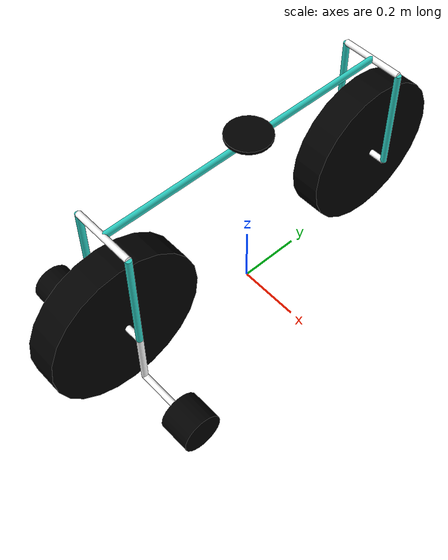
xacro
<?xml version="1.0"?>
<robot name="bicycle" xmlns:xacro="http://www.ros.org/wiki/xacro">

    <!-- XACRO ARG -->
    <xacro:arg name="sim_mode" default="true" />

    <!-- XACRO INCLUDE -->
    <xacro:include filename="material.xacro" />
    <xacro:include filename="property.xacro" />
    <xacro:include filename="inertial.xacro" />
    <xacro:include filename="lidar.xacro" />
    <xacro:include filename="ros2_control.xacro" />

    <!-- BASE LINK -->
    <link name="base_link" />

    <!-- BASE FOOTPRINT LINK -->
    <joint name="base_footprint_joint" type="fixed">
        <parent link="base_link" />
        <child link="base_footprint" />
        <origin xyz="0 0 0" rpy="0 0 0" />
    </joint>

    <link name="base_footprint" />

    <!-- FRAME LINK -->
    <joint name="base_frame_joint" type="fixed">
        <parent link="base_link" />
        <child link="frame" />
        <origin xyz="0 0 ${frame_offset_z}" rpy="0 0 0" />
    </joint>

    <link name="frame">
        <visual>
            <origin xyz="0 0 0" rpy="${pi/2} 0 0" />
            <geometry>
                <cylinder length="${wheel_separation}" radius="${cylindar_radius}" />
            </geometry>
            <material name="cyan" />
        </visual>
        <collision>
            <origin xyz="0 0 0" rpy="${pi/2} 0 0" />
            <geometry>
                <cylinder length="${wheel_separation}" radius="${cylindar_radius}" />
            </geometry>
        </collision>
        <xacro:inertial_cylinder mass="${frame_mass}" length="${wheel_separation}"
            radius="${cylindar_radius}">
            <origin xyz="0 0 0" rpy="${pi/2} 0 0" />
        </xacro:inertial_cylinder>
    </link>

    <gazebo reference="frame">
        <material>Gazebo/Turquoise</material>
    </gazebo>

    <!-- HEAD TUBE LINK -->
    <joint name="frame_head_joint" type="revolute">
        <axis xyz="1 0 0" />
        <limit effort="100" lower="-1.570796327" upper="+1.570796327" velocity="10" />
        <parent link="frame" />
        <child link="head_tube" />
        <origin xyz="0 ${wheel_separation/2} 0" rpy="0 ${pi/2} 0" />
    </joint>

    <link name="head_tube">
        <visual>
            <origin xyz="0 0 0" rpy="0 0 0" />
            <geometry>
                <cylinder length="${2*wheel_thickness}" radius="${cylindar_radius}" />
            </geometry>
            <material name="white" />
        </visual>
        <collision>
            <origin xyz="0 0 0" rpy="0 0 0" />
            <geometry>
                <cylinder length="${2*wheel_thickness}" radius="${cylindar_radius}" />
            </geometry>
        </collision>
        <xacro:inertial_cylinder mass="${head_tube_mass}" length="${2*wheel_thickness}"
            radius="${cylindar_radius}">
            <origin xyz="0 0 0" rpy="0 0 0" />
        </xacro:inertial_cylinder>
    </link>

    <gazebo reference="head_tube">
        <material>Gazebo/White</material>
    </gazebo>

    <!-- BACK HEAD TUBE LINK -->
    <joint name="frame_back_head_joint" type="fixed">
        <parent link="frame" />
        <child link="back_head_tube" />
        <origin xyz="0 ${-wheel_separation/2} 0" rpy="0 ${pi/2} 0" />
    </joint>

    <link name="back_head_tube">
        <visual>
            <origin xyz="0 0 0" rpy="0 0 0" />
            <geometry>
                <cylinder length="${2*wheel_thickness}" radius="${cylindar_radius}" />
            </geometry>
            <material name="white" />
        </visual>
        <collision>
            <origin xyz="0 0 0" rpy="0 0 0" />
            <geometry>
                <cylinder length="${2*wheel_thickness}" radius="${cylindar_radius}" />
            </geometry>
        </collision>
        <xacro:inertial_cylinder mass="${head_tube_mass}" length="${2*wheel_thickness}"
            radius="${cylindar_radius}">
            <origin xyz="0 0 0" rpy="0 0 0" />
        </xacro:inertial_cylinder>
    </link>

    <gazebo reference="back_head_tube">
        <material>Gazebo/White</material>
    </gazebo>

    <!-- FORK RIGHT LINK -->
    <joint name="head_fork_right_joint" type="fixed">
        <parent link="head_tube" />
        <child link="fork_right" />
        <origin xyz="0 0 ${wheel_thickness}" rpy="0 ${-pi/2} 0" />
    </joint>

    <link name="fork_right">
        <visual>
            <origin xyz="0 0 ${-(wheel_radius+const_1)/2}" rpy="0 0 0" />
            <geometry>
                <cylinder length="${wheel_radius+const_1}" radius="${cylindar_radius}" />
            </geometry>
            <material name="cyan" />
        </visual>
        <collision>
            <origin xyz="0 0 ${-(wheel_radius+const_1)/2}" rpy="0 0 0" />
            <geometry>
                <cylinder length="${wheel_radius+const_1}" radius="${cylindar_radius}" />
            </geometry>
        </collision>
        <xacro:inertial_cylinder mass="${fork_mass}" length="${wheel_radius+const_1}"
            radius="${cylindar_radius}">
            <origin xyz="0 0 ${-(wheel_radius+const_1)/2}" rpy="0 0 0" />
        </xacro:inertial_cylinder>
    </link>

    <gazebo reference="fork_right">
        <material>Gazebo/Turquoise</material>
    </gazebo>

    <!-- FORK LEFT LINK -->
    <joint name="head_fork_left_joint" type="fixed">
        <parent link="head_tube" />
        <child link="fork_left" />
        <origin xyz="0 0 ${-wheel_thickness}" rpy="0 ${-pi/2} 0" />
    </joint>

    <link name="fork_left">
        <visual>
            <origin xyz="0 0 ${-(wheel_radius+const_1)/2}" rpy="0 0 0" />
            <geometry>
                <cylinder length="${wheel_radius+const_1}" radius="${cylindar_radius}" />
            </geometry>
            <material name="cyan" />
        </visual>
        <collision>
            <origin xyz="0 0 ${-(wheel_radius+const_1)/2}" rpy="0 0 0" />
            <geometry>
                <cylinder length="${wheel_radius+const_1}" radius="${cylindar_radius}" />
            </geometry>
        </collision>
        <xacro:inertial_cylinder mass="${fork_mass}" length="${wheel_radius+const_1}"
            radius="${cylindar_radius}">
            <origin xyz="0 0 ${-(wheel_radius+const_1)/2}" rpy="0 0 0" />
        </xacro:inertial_cylinder>
    </link>

    <gazebo reference="fork_left">
        <material>Gazebo/Turquoise</material>
    </gazebo>

    <!-- FRONT SCREW LINK -->
    <joint name="head_back_screw_joint" type="fixed">
        <parent link="head_tube" />
        <child link="front_screw" />
        <origin xyz="${wheel_radius+const_1} 0 0" rpy="0 0 0" />
    </joint>

    <link name="front_screw">
        <visual>
            <origin xyz="0 0 0" rpy="0 0 0" />
            <geometry>
                <cylinder length="${2*wheel_thickness}" radius="${cylindar_radius}" />
            </geometry>
            <material name="white" />
        </visual>
        <collision>
            <origin xyz="0 0 0" rpy="0 0 0" />
            <geometry>
                <cylinder length="${2*wheel_thickness}" radius="${cylindar_radius}" />
            </geometry>
        </collision>
        <xacro:inertial_cylinder mass="${screw_mass}" length="${2*wheel_thickness}"
            radius="${cylindar_radius}">
            <origin xyz="0 0 0" rpy="0 0 0" />
        </xacro:inertial_cylinder>
    </link>

    <gazebo reference="front_screw">
        <material>Gazebo/White</material>
    </gazebo>

    <!-- SEAT STAY LEFT LINK -->
    <joint name="back_head_seat_left_joint" type="fixed">
        <parent link="back_head_tube" />
        <child link="seat_stay_left" />
        <origin xyz="0 0 ${-wheel_thickness}" rpy="0 ${-pi/2} 0" />
    </joint>

    <link name="seat_stay_left">
        <visual>
            <origin xyz="0 0 ${-(wheel_radius+const_1)/2}" rpy="0 0 0" />
            <geometry>
                <cylinder length="${wheel_radius+const_1}" radius="${cylindar_radius}" />
            </geometry>
            <material name="cyan" />
        </visual>
        <collision>
            <origin xyz="0 0 ${-(wheel_radius+const_1)/2}" rpy="0 0 0" />
            <geometry>
                <cylinder length="${wheel_radius+const_1}" radius="${cylindar_radius}" />
            </geometry>
        </collision>
        <xacro:inertial_cylinder mass="${seat_stay_mass}" length="${wheel_radius+const_1}"
            radius="${cylindar_radius}">
            <origin xyz="0 0 ${-(wheel_radius+const_1)/2}" rpy="0 0 0" />
        </xacro:inertial_cylinder>
    </link>

    <gazebo reference="seat_stay_left">
        <material>Gazebo/Turquoise</material>
    </gazebo>

    <!-- SEAT STAY RIGHT LINK -->
    <joint name="back_head_seat_right_joint" type="fixed">
        <parent link="back_head_tube" />
        <child link="seat_stay_right" />
        <origin xyz="0 0 ${+wheel_thickness}" rpy="0 ${-pi/2} 0" />
    </joint>

    <link name="seat_stay_right">
        <visual>
            <origin xyz="0 0 ${-(wheel_radius+const_1)/2}" rpy="0 0 0" />
            <geometry>
                <cylinder length="${wheel_radius+const_1}" radius="${cylindar_radius}" />
            </geometry>
            <material name="cyan" />
        </visual>
        <collision>
            <origin xyz="0 0 ${-(wheel_radius+const_1)/2}" rpy="0 0 0" />
            <geometry>
                <cylinder length="${wheel_radius+const_1}" radius="${cylindar_radius}" />
            </geometry>
        </collision>
        <xacro:inertial_cylinder mass="${seat_stay_mass}" length="${wheel_radius+const_1}"
            radius="${cylindar_radius}">
            <origin xyz="0 0 ${-(wheel_radius+const_1)/2}" rpy="0 0 0" />
        </xacro:inertial_cylinder>
    </link>

    <gazebo reference="seat_stay_right">
        <material>Gazebo/Turquoise</material>
    </gazebo>

    <!-- BACK SCREW LINK -->
    <joint name="back_head_back_screw_joint" type="fixed">
        <parent link="back_head_tube" />
        <child link="back_screw" />
        <origin xyz="${wheel_radius+const_1} 0 0" rpy="0 0 0" />
    </joint>

    <link name="back_screw">
        <visual>
            <origin xyz="0 0 0" rpy="0 0 0" />
            <geometry>
                <cylinder length="${2*wheel_thickness}" radius="${cylindar_radius}" />
            </geometry>
            <material name="white" />
        </visual>
        <collision>
            <origin xyz="0 0 0" rpy="0 0 0" />
            <geometry>
                <cylinder length="${2*wheel_thickness}" radius="${cylindar_radius}" />
            </geometry>
        </collision>
        <xacro:inertial_cylinder mass="${screw_mass}" length="${2*wheel_thickness}"
            radius="${cylindar_radius}">
            <origin xyz="0 0 0" rpy="0 0 0" />
        </xacro:inertial_cylinder>
    </link>

    <gazebo reference="back_screw">
        <material>Gazebo/White</material>
    </gazebo>

    <!-- FRONT WHEEL -->
    <joint name="screw_front_wheel_joint" type="continuous">
        <axis xyz="0 0 1" />
        <parent link="front_screw" />
        <child link="front_wheel" />
        <origin xyz="0 0 0" rpy="0 ${-pi} 0" />
    </joint>

    <link name="front_wheel">
        <visual>
            <origin xyz="0 0 0" rpy="0 0 0" />
            <geometry>
                <cylinder length="${wheel_thickness}" radius="${wheel_radius}" />
            </geometry>
            <material name="black" />
        </visual>
        <collision>
            <origin xyz="0 0 0" rpy="0 0 0" />
            <geometry>
                <sphere radius="${wheel_radius}" />
            </geometry>
        </collision>
        <xacro:inertial_cylinder mass="${wheel_mass}" length="${wheel_thickness}"
            radius="${wheel_radius}">
            <origin xyz="0 0 0" rpy="0 0 0" />
        </xacro:inertial_cylinder>
    </link>

    <gazebo reference="front_wheel">
        <material>Gazebo/Black</material>
    </gazebo>

    <!-- BACK WHEEL -->
    <joint name="screw_back_wheel_joint" type="continuous">
        <axis xyz="0 0 1" />
        <parent link="back_screw" />
        <child link="back_wheel" />
        <origin xyz="0 0 0" rpy="0 ${-pi} 0" />
    </joint>

    <link name="back_wheel">
        <visual>
            <origin xyz="0 0 0" rpy="0 0 0" />
            <geometry>
                <cylinder length="${wheel_thickness}" radius="${wheel_radius}" />
            </geometry>
            <material name="black" />
        </visual>
        <collision>
            <origin xyz="0 0 0" rpy="0 0 0" />
            <geometry>
                <sphere radius="${wheel_radius}" />
            </geometry>
        </collision>
        <xacro:inertial_cylinder mass="${wheel_mass}" length="${wheel_thickness}"
            radius="${wheel_radius}">
            <origin xyz="0 0 0" rpy="0 0 0" />
        </xacro:inertial_cylinder>
    </link>

    <gazebo reference="back_wheel">
        <material>Gazebo/Black</material>
    </gazebo>

    <!-- RIGHT SUPPORT LEG LINK -->
    <joint name="screw_right_support_joint" type="fixed">
        <parent link="back_screw" />
        <child link="right_support_leg" />
        <origin xyz="0 0 ${wheel_thickness}" rpy="0 ${-pi/2} 0" />
    </joint>

    <link name="right_support_leg">
        <visual>
            <origin xyz="0 0 ${-3/8*wheel_radius}" rpy="0 0 0" />
            <geometry>
                <cylinder length="${3/4*wheel_radius}" radius="${cylindar_radius}" />
            </geometry>
            <material name="white" />
        </visual>
        <collision>
            <origin xyz="0 0 ${-3/8*wheel_radius}" rpy="0 0 0" />
            <geometry>
                <cylinder length="${3/4*wheel_radius}" radius="${cylindar_radius}" />
            </geometry>
        </collision>
        <xacro:inertial_cylinder mass="${support_leg_mass}" length="${3/4*wheel_radius}"
            radius="${cylindar_radius}">
            <origin xyz="0 0 ${-3/8*wheel_radius}" rpy="0 0 0" />
        </xacro:inertial_cylinder>
    </link>

    <gazebo reference="right_support_leg">
        <material>Gazebo/White</material>
    </gazebo>

    <!-- RIGHT SUPPORT AXIS LINK -->
    <joint name="right_leg_axis_joint" type="fixed">
        <parent link="right_support_leg" />
        <child link="right_support_axis" />
        <origin xyz="0 0 ${-3/4*wheel_radius}" rpy="0 ${pi/2} 0" />
    </joint>

    <link name="right_support_axis">
        <visual>
            <origin xyz="0 0 ${wheel_thickness}" rpy="0 0 0" />
            <geometry>
                <cylinder length="${2*wheel_thickness}" radius="${cylindar_radius}" />
            </geometry>
            <material name="white" />
        </visual>
        <collision>
            <origin xyz="0 0 ${wheel_thickness}" rpy="0 0 0" />
            <geometry>
                <cylinder length="${2*wheel_thickness}" radius="${cylindar_radius}" />
            </geometry>
        </collision>
        <xacro:inertial_cylinder mass="${support_axis_mass}" length="${2*wheel_thickness}"
            radius="${cylindar_radius}">
            <origin xyz="0 0 ${wheel_thickness}" rpy="0 0 0" />
        </xacro:inertial_cylinder>
    </link>

    <gazebo reference="right_support_axis">
        <material>Gazebo/White</material>
    </gazebo>

    <!-- RIGHT SUPPORT WHEEL LINK -->
    <joint name="right_axis_wheel_joint" type="continuous">
        <axis xyz="0 0 1" />
        <parent link="right_support_axis" />
        <child link="right_support_wheel" />
        <origin xyz="0 0 ${2*wheel_thickness}" rpy="0 ${pi} 0" />
    </joint>

    <link name="right_support_wheel">
        <visual>
            <origin xyz="0 0 0" rpy="0 0 0" />
            <geometry>
                <cylinder length="${wheel_thickness}" radius="${1/4*wheel_radius}" />
            </geometry>
            <material name="black" />
        </visual>
        <collision>
            <origin xyz="0 0 0" rpy="0 0 0" />
            <geometry>
                <sphere radius="${1/4*wheel_radius}" />
            </geometry>
        </collision>
        <xacro:inertial_cylinder mass="${support_wheel_mass}" length="${wheel_thickness}"
            radius="${1/4*wheel_radius}">
            <origin xyz="0 0 0" rpy="0 0 0" />
        </xacro:inertial_cylinder>
    </link>

    <gazebo reference="right_support_wheel">
        <material>Gazebo/Black</material>
        <mu1 value="0.001" />
        <mu2 value="0.001" />
    </gazebo>

    <!-- LEFT SUPPORT LEG LINK -->
    <joint name="screw_left_support_joint" type="fixed">
        <parent link="back_screw" />
        <child link="left_support_leg" />
        <origin xyz="0 0 ${-wheel_thickness}" rpy="0 ${-pi/2} 0" />
    </joint>

    <link name="left_support_leg">
        <visual>
            <origin xyz="0 0 ${-3/8*wheel_radius}" rpy="0 0 0" />
            <geometry>
                <cylinder length="${3/4*wheel_radius}" radius="${cylindar_radius}" />
            </geometry>
            <material name="white" />
        </visual>
        <collision>
            <origin xyz="0 0 ${-3/8*wheel_radius}" rpy="0 0 0" />
            <geometry>
                <cylinder length="${3/4*wheel_radius}" radius="${cylindar_radius}" />
            </geometry>
        </collision>
        <xacro:inertial_cylinder mass="${support_leg_mass}" length="${3/4*wheel_radius}"
            radius="${cylindar_radius}">
            <origin xyz="0 0 ${-3/8*wheel_radius}" rpy="0 0 0" />
        </xacro:inertial_cylinder>
    </link>

    <gazebo reference="left_support_leg">
        <material>Gazebo/White</material>
    </gazebo>

    <!-- LEFT SUPPORT AXIS LINK -->
    <joint name="left_leg_axis_joint" type="fixed">
        <parent link="left_support_leg" />
        <child link="left_support_axis" />
        <origin xyz="0 0 ${-3/4*wheel_radius}" rpy="0 ${pi/2} 0" />
    </joint>

    <link name="left_support_axis">
        <visual>
            <origin xyz="0 0 ${-wheel_thickness}" rpy="0 0 0" />
            <geometry>
                <cylinder length="${2*wheel_thickness}" radius="${cylindar_radius}" />
            </geometry>
            <material name="white" />
        </visual>
        <collision>
            <origin xyz="0 0 ${-wheel_thickness}" rpy="0 0 0" />
            <geometry>
                <cylinder length="${2*wheel_thickness}" radius="${cylindar_radius}" />
            </geometry>
        </collision>
        <xacro:inertial_cylinder mass="${support_axis_mass}" length="${2*wheel_thickness}"
            radius="${cylindar_radius}">
            <origin xyz="0 0 ${-wheel_thickness}" rpy="0 0 0" />
        </xacro:inertial_cylinder>
    </link>

    <gazebo reference="left_support_axis">
        <material>Gazebo/White</material>
    </gazebo>

    <!-- LEFT SUPPORT WHEEL LINK -->
    <joint name="left_axis_wheel_joint" type="continuous">
        <axis xyz="0 0 1" />
        <parent link="left_support_axis" />
        <child link="left_support_wheel" />
        <origin xyz="0 0 ${-2*wheel_thickness}" rpy="0 ${pi} 0" />
    </joint>

    <link name="left_support_wheel">
        <visual>
            <origin xyz="0 0 0" rpy="0 0 0" />
            <geometry>
                <cylinder length="${wheel_thickness}" radius="${1/4*wheel_radius}" />
            </geometry>
            <material name="black" />
        </visual>
        <collision>
            <origin xyz="0 0 0" rpy="0 0 0" />
            <geometry>
                <sphere radius="${1/4*wheel_radius}" />
            </geometry>
        </collision>
        <xacro:inertial_cylinder mass="${support_wheel_mass}" length="${wheel_thickness}"
            radius="${1/4*wheel_radius}">
            <origin xyz="0 0 0" rpy="0 0 0" />
        </xacro:inertial_cylinder>
    </link>

    <gazebo reference="left_support_wheel">
        <material>Gazebo/Black</material>
        <mu1 value="0.001" />
        <mu2 value="0.001" />
    </gazebo>

</robot>

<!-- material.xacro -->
<robot name="bicycle" xmlns:xacro="http://www.ros.org/wiki/xacro">

    <!-- MATERIAL COLORS -->
    <material name="white">
        <color rgba="1 1 1 1" />
    </material>

    <material name="cyan">
        <color rgba="0.18 0.83 0.78 1" />
    </material>

    <material name="blue">
        <color rgba="0.2 0.2 1 1" />
    </material>

    <material name="black">
        <color rgba="0 0 0 1" />
    </material>

    <material name="red">
        <color rgba="1 0 0 1" />
    </material>

</robot>

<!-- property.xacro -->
<robot name="bicycle" xmlns:xacro="http://www.ros.org/wiki/xacro">

    <!-- XACRO PROPERTIES -->
    <!-- TODO thickns wheels -->
    <xacro:property name="wheel_radius" value="0.25" />
    <xacro:property name="wheel_thickness" value="0.1" />
    <xacro:property name="wheel_separation" value="0.98" />
    <xacro:property name="wheel_mass" value="1.0" />

    <xacro:property name="support_leg_mass" value="0.3" />
    <xacro:property name="support_axis_mass" value="0.1" />
    <xacro:property name="support_wheel_mass" value="0.5" />

    <xacro:property name="frame_offset_z" value="${2*wheel_radius+const_1}" />

    <xacro:property name="frame_mass" value="1.5" />
    <xacro:property name="screw_mass" value="0.2" />
    <xacro:property name="seat_stay_mass" value="0.5" />
    <xacro:property name="fork_mass" value="0.5" />
    <xacro:property name="head_tube_mass" value="0.2" />

    <xacro:property name="const_1" value="0.10" />
    <xacro:property name="cylindar_radius" value="0.01" />

</robot>

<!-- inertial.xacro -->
<robot name="bicycle" xmlns:xacro="http://www.ros.org/wiki/xacro">

    <!-- XACRO INERTIAL -->
    <xacro:macro name="inertial_cylinder" params="mass length radius *origin">
        <inertial>
            <xacro:insert_block name="origin" />
            <mass value="${mass}" />
            <inertia ixx="${(1/12) * mass * (3*radius*radius + length*length)}" ixy="0.0" ixz="0.0"
                iyy="${(1/12) * mass * (3*radius*radius + length*length)}" iyz="0.0"
                izz="${(1/2) * mass * (radius*radius)}" />
        </inertial>
    </xacro:macro>

</robot>

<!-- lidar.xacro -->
<robot name="bicycle" xmlns:xacro="http://www.ros.org/wiki/xacro">

    <joint name="frame_lidar" type="fixed">
        <parent link="frame" />
        <child link="laser_frame" />
        <origin xyz="0 0 0.02" rpy="0 0 0" />
    </joint>

    <link name="laser_frame">
        <visual>
            <origin xyz="0 0 0" rpy="0 0 0" />
            <geometry>
                <cylinder length="0.01" radius="0.07" />
                <!-- If mesh is used, adjustments need to be done to origin and other -->
            </geometry>
            <material name="black" />
        </visual>
        <collision>
            <geometry>
                <cylinder length="0.01" radius="0.07" />
            </geometry>
        </collision>
        <xacro:inertial_cylinder mass="0.5" length="0.01" radius="0.07">
            <origin xyz="0 0 0" rpy="0 0 0" />
        </xacro:inertial_cylinder>
    </link>

    <gazebo reference="laser_frame">
        <sensor name="laser" type="ray">
            <pose>0 0 0 0 0 0</pose>
            <visualize>false</visualize>
            <update_rate>9</update_rate>
            <ray>
                <scan>
                    <horizontal>
                        <samples>360</samples>
                        <resoluation>1</resoluation>
                        <min_angle>-3.14</min_angle>
                        <max_angle>3.14</max_angle>
                    </horizontal>
                </scan>
                <range>
                    <min>0.12</min>
                    <max>10.0</max>
                    <resoluation>0.01</resoluation>
                </range>
            </ray>
            <plugin name="laser_controller" filename="libgazebo_ros_ray_sensor.so">
                <ros>
                    <!-- deprecated syntax -->
                    <argument>--ros-args --remap ~/out:=scan</argument>
                </ros>
                <output_type>sensor_msgs/LaserScan</output_type>
                <frame_name>laser_frame</frame_name>
            </plugin>
        </sensor>
        <material>Gazebo/Black</material>
    </gazebo>

</robot>
